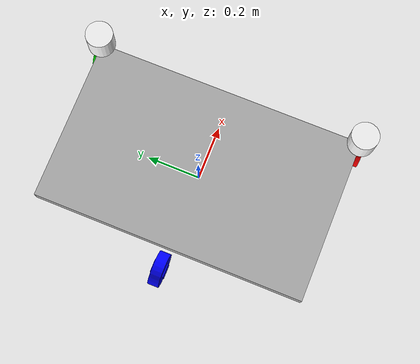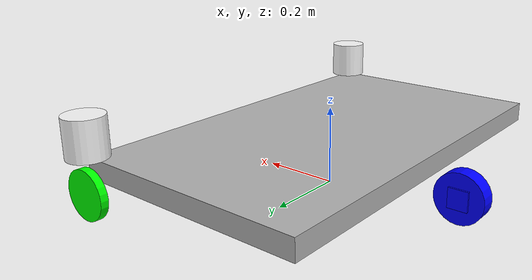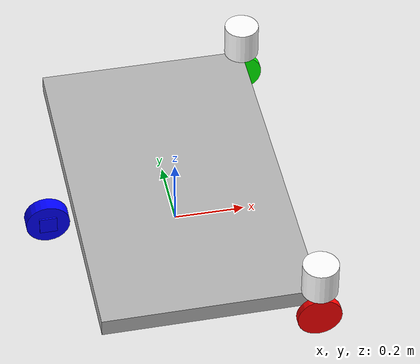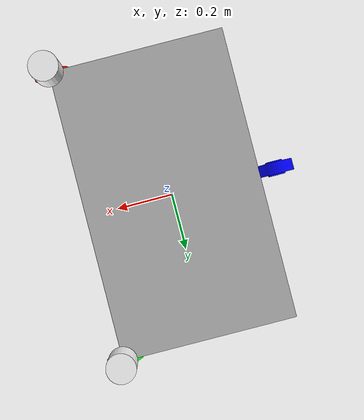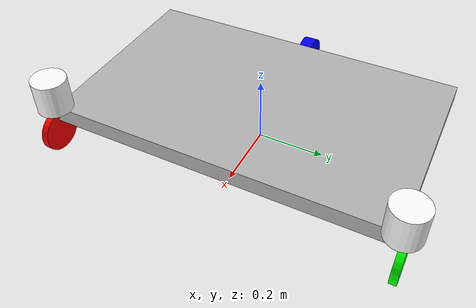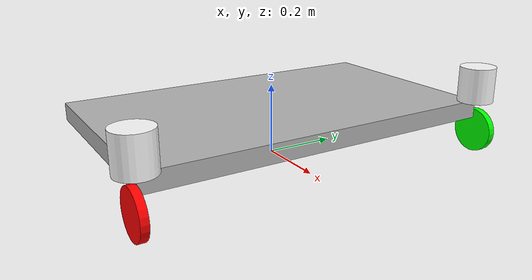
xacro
<?xml version="1.0"?>
<robot xmlns:xacro="http://www.ros.org/wiki/xacro" name ="argo_drive_robot">

    <xacro:include filename="$(find ros2_ws_robot_launch)/config/inertial_macros.xacro"/>

    <!-- Materialien -->
    <material name="grey">
        <color rgba="0.7 0.7 0.7 1"/>
    </material>

    <material name="green">
        <color rgba="0 1 0 1"/>
    </material>

    <material name="white">
        <color rgba="1 1 1 1"/>
    </material>

    <material name="blue">
        <color rgba="0 0 1 1"/>
    </material>

    <material name="red">
        <color rgba="1 0 0 1"/>
    </material>

    <link name="base_link"/>

    <joint name="base_footprint_joint" type="fixed">
        <parent link="base_link"/>
        <child link="base_footprint"/>
        <origin xyz= "0 0 0" rpy= "0 0 0 "/>
    </joint>

    <link name= "base_footprint">
        <geometry>
                <box size="0.6 1 0.05" />
        </geometry>
    </link>

    <!-- Grundplatte des Roboters -->
    <joint name="robot_base_joint" type="fixed">
        <parent link="base_link" />
        <child link="robot_base" />
        <origin xyz="0 0 0.125" rpy="0 0 0" />
    </joint>

    <link name="robot_base">
        <visual>
            <geometry>
                <box size="0.6 1 0.05" />
            </geometry>
            <material name="grey"/>
        </visual>

        <collision>
            <geometry>
                <box size="0.6 1 0.05" />
            </geometry>

        </collision>
        <xacro:inertial_box mass="2" x="0.6" y="1" z="0.5">
            <origin xyz="0 0 0" rpy="0 0 0"/>
        </xacro:inertial_box>
    </link>

    <!-- Scannermitte -->
    <joint name="scan_middle" type="fixed">
        <parent link="base_link" />
        <child link="scan_middle_link" />
        <origin xyz="0.3 0 0.2" rpy="0 0 0" />
    </joint>

    <link name="scan_middle_link">
    </link>

    <joint name="scan_middle_scan_joint" type="fixed">
        <parent link="scan_middle_link" />
        <child link="scan_middle_scan" />
        <origin xyz="0 0 0" rpy="0 0 -1.5708" />
    </joint>

    <link name="scan_middle_scan">
    </link>

    <joint name="scan1_joint" type="fixed">
        <parent link="scan_middle_link" />
        <child link="scan1" />
        <origin xyz="0 0.5  0" rpy="0 0 ${pi/2}" />
    </joint>

    <link name="scan1">

        <visual>
            <geometry>
                <cylinder radius="0.05" length="0.1" />
            </geometry>
            <origin xyz="0 0 0" rpy="0 0 ${pi/2}" />
            <material name="white"/>
        </visual>

        <collision>
            <geometry>
                    <cylinder radius="0.05" length="0.1" />
            </geometry>

        </collision>
        <xacro:inertial_cylinder mass="0.1" length="0.1" radius="0.05">
             <origin xyz="0 0 0" rpy="0 0 1.57075" />
        </xacro:inertial_cylinder>

    </link>

    <gazebo reference="scan1">
        <sensor type="gpu_lidar" name="laser1">
            <pose> 0 0 0 0 0 0 </pose>
            <visualize> false </visualize>
            <update_rate>30</update_rate>
            <lidar>
                 <scan>
                    <horizontal>
                        <samples>360</samples>
                        <resolution>1.0</resolution>
                        <min_angle> -2.399827 </min_angle>
                        <max_angle> 2.399827 </max_angle>
                    </horizontal>
                </scan>
                <range>
                    <min>0.3</min>
                    <max>12.0</max>
                    <resolution>0.01</resolution>
                </range>
            </lidar>
            <topic> scan1 </topic>
            <gz_frame_id>scan1</gz_frame_id>
        </sensor>
    </gazebo>

    <!-- Scanner 2  -->
    <joint name="scan2_joint" type="fixed">
        <parent link="scan_middle_link" />
        <child link="scan2" />
        <origin xyz="0 -0.5 0" rpy="0 0 ${pi*1.5}" />
    </joint>

    <link name="scan2">

        <visual>
            <geometry>
                <cylinder radius="0.05" length="0.1" />
            </geometry>
            <origin xyz="0 0 0 " rpy="0 0 ${pi*1.5}" />
            <material name="white"/>
        </visual>
        <collision>
             <geometry>
                <cylinder radius="0.05" length="0.1" />
            </geometry>

        </collision>
        <xacro:inertial_cylinder mass="0.1" length="0.1" radius="0.05">
            <origin xyz="0 0 0" rpy="0 0 0"/>
        </xacro:inertial_cylinder>

    </link>

    <gazebo reference="scan2">
        <sensor type="gpu_lidar" name="laser2">
            <pose> 0 0 0 0 0 0 </pose>
            <visualize> false </visualize>
            <update_rate>30</update_rate>
            <lidar>
                 <scan>
                    <horizontal>
                        <samples>360</samples>
                        <resolution>1.0</resolution>
                        <min_angle> -2.399827 </min_angle>
                        <max_angle> 2.399827 </max_angle>
                    </horizontal>
                </scan>
                <range>
                    <min>0.3</min>
                    <max>12.0</max>
                    <resolution>0.01</resolution>
                </range>
            </lidar>
            <topic> scan2 </topic>
            <gz_frame_id>scan2</gz_frame_id>
        </sensor>
    </gazebo>

    <!-- Verbindung für Lenken (Drehen um Z-Achse) -->
    <joint name="steering_joint" type="continuous">
        <parent link="base_link"/>
        <child link="rear_mount"/>
        <origin xyz="-0.37 0 0.0625" rpy="0 0 0"/> <!-- Position des Halters -->
        <axis xyz="0 0 -1"/> <!-- Rotation um Z-Achse für Lenken -->
    </joint>

    <!-- Hinterrad-Halterung -->
    <link name="rear_mount">
        <visual>
            <geometry>
                <box size="0.05 0.05 0.05"/> <!-- Kleine Verbindungshalterung -->
            </geometry>
            <origin xyz="0 0 0" rpy="0 0 0"/>
            <material name="blue"/>
        </visual>
        <xacro:inertial_box mass="0.01" x="0.001" y="0.001" z="0.001">
            <origin xyz="0 0 0" rpy="0 0 0"/>
        </xacro:inertial_box>

    </link>

     <!-- Verbindung für Antrieb (Drehen um X-Achse) -->
    <joint name="traction_joint" type="continuous">
        <parent link="rear_mount"/> <!-- Antriebsbewegung auf der Halterung -->
        <child link="rear_drive_wheel"/>
        <origin xyz="0 0 0" rpy="0 0 0"/>
        <axis xyz="0 1 0"/> <!-- Rotation um X-Achse für Antrieb -->
    </joint>

    <!-- Hinterrad -->
    <link name="rear_drive_wheel">
        <visual>
            <geometry>
                <cylinder radius="0.0625" length="0.04"/>
            </geometry>
            <origin xyz="0 0 0" rpy="${pi/2} 0 0"/>
            <material name="blue"/>
        </visual>

        <collision>
           <geometry>
                <cylinder radius="0.0625" length="0.04"/>
            </geometry>
            <origin xyz="0 0 0" rpy="${pi/2} 0 0"/>
        </collision>

        <xacro:inertial_cylinder mass="0.5" length="0.04" radius="0.0625">
            <origin xyz="0 0 0" rpy="0 0 0"/>
        </xacro:inertial_cylinder>
    </link>

    <!-- Vordere linke feststehende Rad -->
    <joint name="left_wheel_joint" type="continuous">
        <parent link="base_link"/>
        <child link="front_left_wheel"/>
        <origin xyz="0.3 0.51 0.0625" rpy="${pi/2} 0 0"/>
        <axis xyz="0 0 1"/> <!-- Rotation um X-Achse für Antrieb -->
    </joint>

    <link name="front_left_wheel">
        <visual>
            <geometry>
                <cylinder radius="0.0625" length="0.02"/>
            </geometry>
            <material name="green"/>
        </visual>
        <collision>
            <geometry>
                    <cylinder radius="0.0625" length="0.02"/>
            </geometry>
        </collision>
        <xacro:inertial_cylinder mass="0.5" length="0.02" radius="0.0625">
            <origin xyz="0 0 0" rpy="0 0 0"/>
        </xacro:inertial_cylinder>

    </link>

    <!-- Vordere rechte feststehende Rad -->
     <joint name="right_wheel_joint" type="continuous">
        <parent link="base_link"/>
        <child link="front_right_wheel"/>
        <origin xyz="0.3 -0.51 0.0625" rpy="${pi/2} 0 0"/>
        <axis xyz="0 0 1"/> <!-- Rotation um X-Achse für Antrieb -->
    </joint>

    <link name="front_right_wheel">
        <visual>
            <geometry>
                <cylinder radius="0.0625" length="0.02"/>
            </geometry>

            <material name="red"/>
        </visual>
        <collision>
            <geometry>
                    <cylinder radius="0.0625" length="0.02"/>
            </geometry>
        </collision>
        <xacro:inertial_cylinder mass="0.5" length="0.02" radius="0.0625">
            <origin xyz="0 0 0" rpy="0 0 0"/>
        </xacro:inertial_cylinder>

    </link>

    <ros2_control name="IgnitionSystem" type="system">
        <hardware>
            <plugin>ign_ros2_control/IgnitionSystem</plugin>
        </hardware>

        <joint name="steering_joint">
            <command_interface name="position"/>
            <state_interface name="position"/>
        </joint>
        <joint name="traction_joint">
            <command_interface name="velocity"/>
            <state_interface name="position"/>
            <state_interface name="velocity"/>
        </joint>
    </ros2_control>

     <gazebo>
    <plugin filename="ign_ros2_control-system" name="ign_ros2_control::IgnitionROS2ControlPlugin">
      <parameters>$(find ros2_ws_robot_launch)/params/tricycle_drive_controller.yaml</parameters>
    </plugin>
  </gazebo>

</robot>
